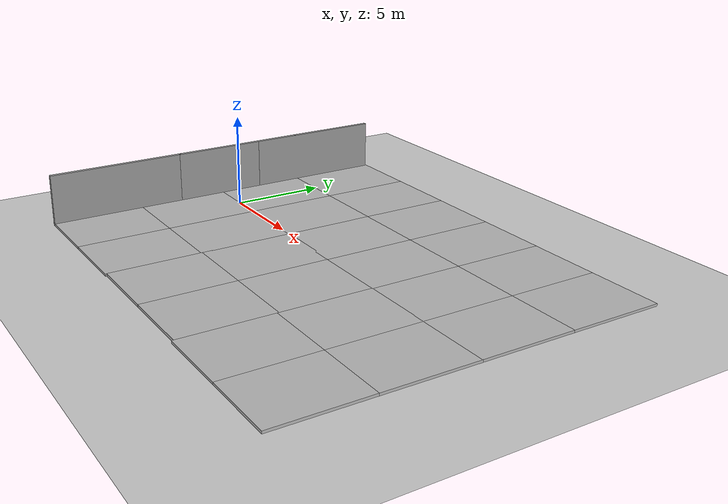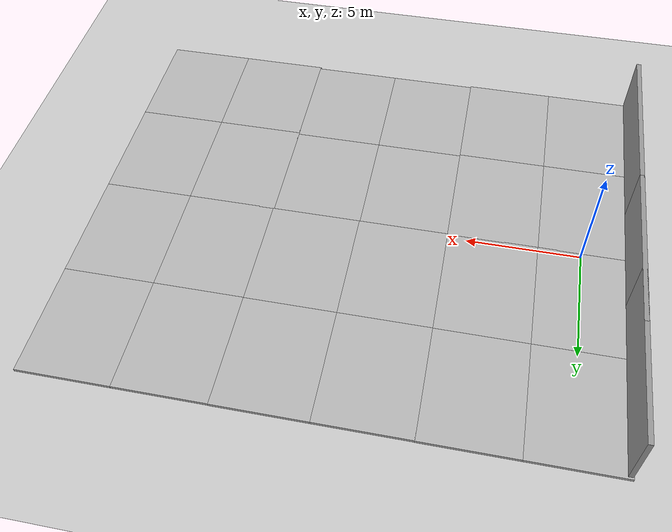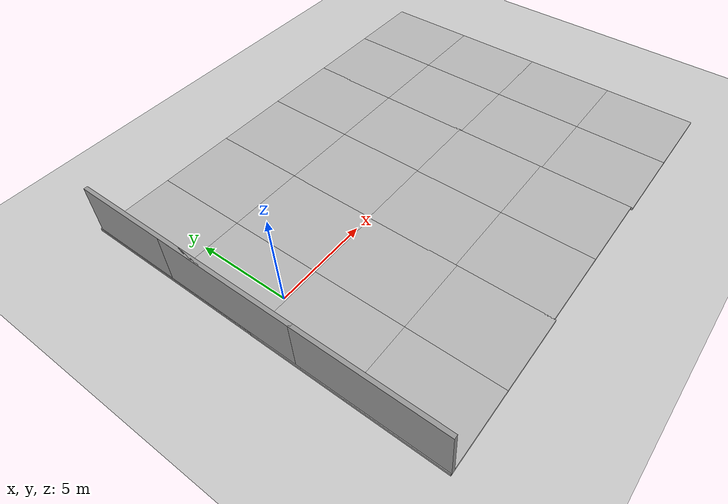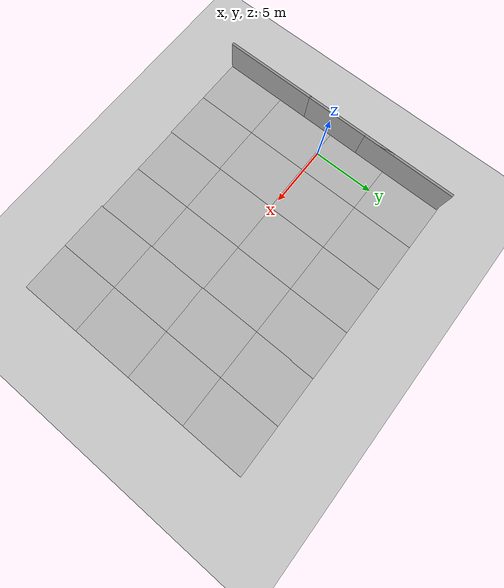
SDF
<sdf version="1.7">
 <world name="default">
  <light name="sun" type="directional">
   <pose>0 0 10 0 -0 0</pose>
   <diffuse>0.8 0.8 0.8 1</diffuse>
   <specular>0.1 0.1 0.1 1</specular>
   <attenuation>
    <range>1000</range>
    <constant>0.9</constant>
    <linear>0.01</linear>
    <quadratic>0.001</quadratic>
   </attenuation>
   <direction>-0.5 0.5 -1</direction>
   <spot><inner_angle>0</inner_angle><outer_angle>0</outer_angle><falloff>0</falloff></spot>
  </light>
  <model name="ground_plane">
   <static>1</static>
   <link name="link">
    <collision name="collision">
     <geometry><plane><normal>0 0 1</normal><size>100 100</size></plane></geometry>
     <surface><friction><ode><mu>100</mu><mu2>50</mu2></ode></friction></surface>
    </collision>
    <visual name="visual">
     <cast_shadows>0</cast_shadows>
     <geometry><plane><normal>0 0 1</normal><size>100 100</size></plane></geometry>
     <material>
      <script><uri>file://media/materials/scripts/gazebo.material</uri><name>Gazebo/Grey</name></script>
     </material>
    </visual>
   </link>
  </model>
  <gravity>0 0 -9.8</gravity>
  <magnetic_field>6e-06 2.3e-05 -4.2e-05</magnetic_field>
  <atmosphere type="adiabatic"/>
  <physics name="default_physics" default="0" type="ode">
   <max_step_size>0.001</max_step_size>
   <real_time_factor>1</real_time_factor>
   <real_time_update_rate>1000</real_time_update_rate>
  </physics>
  <scene><ambient>0.4 0.4 0.4 1</ambient><background>0.7 0.7 0.7 1</background><shadows>1</shadows></scene>
  <spherical_coordinates>
   <surface_model>EARTH_WGS84</surface_model>
   <latitude_deg>45.4778</latitude_deg>
   <longitude_deg>9.23306</longitude_deg>
   <elevation>177</elevation>
   <heading_deg>180</heading_deg>
  </spherical_coordinates>
  <model name="mud_box_0">
   <static>1</static>
   <link name="link">
    <collision name="collision"><geometry><box><size>8 10 0.2</size></box></geometry></collision>
    <visual name="visual_1">
     <pose>-2 2.5 0 0 -0 0</pose>
     <cast_shadows>0</cast_shadows>
     <geometry><box><size>4 5 0.2</size></box></geometry>
     <material>
      <script>
       <uri>model://mud_box/materials/scripts</uri>
       <uri>model://mud_box/materials/textures</uri>
       <name>vrc/mud</name>
      </script>
     </material>
    </visual>
    <visual name="visual_2">
     <pose>2 2.5 0 0 -0 0</pose>
     <cast_shadows>0</cast_shadows>
     <geometry><box><size>4 5 0.2</size></box></geometry>
     <material>
      <script>
       <uri>model://mud_box/materials/scripts</uri>
       <uri>model://mud_box/materials/textures</uri>
       <name>vrc/mud</name>
      </script>
     </material>
    </visual>
    <visual name="visual_3">
     <pose>2 -2.5 0 0 -0 0</pose>
     <cast_shadows>0</cast_shadows>
     <geometry><box><size>4 5 0.2</size></box></geometry>
     <material>
      <script>
       <uri>model://mud_box/materials/scripts</uri>
       <uri>model://mud_box/materials/textures</uri>
       <name>vrc/mud</name>
      </script>
     </material>
    </visual>
    <visual name="visual_4">
     <pose>-2 -2.5 0 0 -0 0</pose>
     <cast_shadows>0</cast_shadows>
     <geometry><box><size>4 5 0.2</size></box></geometry>
     <material>
      <script>
       <uri>model://mud_box/materials/scripts</uri>
       <uri>model://mud_box/materials/textures</uri>
       <name>vrc/mud</name>
      </script>
     </material>
    </visual>
   </link>
   <pose>1.86767 4.83104 0 0 -0 0</pose>
  </model>
  <model name="mud_box_2">
   <static>1</static>
   <link name="link">
    <collision name="collision"><geometry><box><size>8 10 0.2</size></box></geometry></collision>
    <visual name="visual_1">
     <pose>-2 2.5 0 0 -0 0</pose>
     <cast_shadows>0</cast_shadows>
     <geometry><box><size>4 5 0.2</size></box></geometry>
     <material>
      <script>
       <uri>model://mud_box/materials/scripts</uri>
       <uri>model://mud_box/materials/textures</uri>
       <name>vrc/mud</name>
      </script>
     </material>
    </visual>
    <visual name="visual_2">
     <pose>2 2.5 0 0 -0 0</pose>
     <cast_shadows>0</cast_shadows>
     <geometry><box><size>4 5 0.2</size></box></geometry>
     <material>
      <script>
       <uri>model://mud_box/materials/scripts</uri>
       <uri>model://mud_box/materials/textures</uri>
       <name>vrc/mud</name>
      </script>
     </material>
    </visual>
    <visual name="visual_3">
     <pose>2 -2.5 0 0 -0 0</pose>
     <cast_shadows>0</cast_shadows>
     <geometry><box><size>4 5 0.2</size></box></geometry>
     <material>
      <script>
       <uri>model://mud_box/materials/scripts</uri>
       <uri>model://mud_box/materials/textures</uri>
       <name>vrc/mud</name>
      </script>
     </material>
    </visual>
    <visual name="visual_4">
     <pose>-2 -2.5 0 0 -0 0</pose>
     <cast_shadows>0</cast_shadows>
     <geometry><box><size>4 5 0.2</size></box></geometry>
     <material>
      <script>
       <uri>model://mud_box/materials/scripts</uri>
       <uri>model://mud_box/materials/textures</uri>
       <name>vrc/mud</name>
      </script>
     </material>
    </visual>
   </link>
   <pose>1.85975 -5.14192 0 0 -0 0</pose>
  </model>
  <model name="mud_box_3">
   <static>1</static>
   <link name="link">
    <collision name="collision"><geometry><box><size>8 10 0.2</size></box></geometry></collision>
    <visual name="visual_1">
     <pose>-2 2.5 0 0 -0 0</pose>
     <cast_shadows>0</cast_shadows>
     <geometry><box><size>4 5 0.2</size></box></geometry>
     <material>
      <script>
       <uri>model://mud_box/materials/scripts</uri>
       <uri>model://mud_box/materials/textures</uri>
       <name>vrc/mud</name>
      </script>
     </material>
    </visual>
    <visual name="visual_2">
     <pose>2 2.5 0 0 -0 0</pose>
     <cast_shadows>0</cast_shadows>
     <geometry><box><size>4 5 0.2</size></box></geometry>
     <material>
      <script>
       <uri>model://mud_box/materials/scripts</uri>
       <uri>model://mud_box/materials/textures</uri>
       <name>vrc/mud</name>
      </script>
     </material>
    </visual>
    <visual name="visual_3">
     <pose>2 -2.5 0 0 -0 0</pose>
     <cast_shadows>0</cast_shadows>
     <geometry><box><size>4 5 0.2</size></box></geometry>
     <material>
      <script>
       <uri>model://mud_box/materials/scripts</uri>
       <uri>model://mud_box/materials/textures</uri>
       <name>vrc/mud</name>
      </script>
     </material>
    </visual>
    <visual name="visual_4">
     <pose>-2 -2.5 0 0 -0 0</pose>
     <cast_shadows>0</cast_shadows>
     <geometry><box><size>4 5 0.2</size></box></geometry>
     <material>
      <script>
       <uri>model://mud_box/materials/scripts</uri>
       <uri>model://mud_box/materials/textures</uri>
       <name>vrc/mud</name>
      </script>
     </material>
    </visual>
   </link>
   <pose>9.84986 4.82173 0 0 -0 0</pose>
  </model>
  <audio><device>default</device></audio>
  <model name="mud_box_4">
   <static>1</static>
   <link name="link">
    <collision name="collision"><geometry><box><size>8 10 0.2</size></box></geometry></collision>
    <visual name="visual_1">
     <pose>-2 2.5 0 0 -0 0</pose>
     <cast_shadows>0</cast_shadows>
     <geometry><box><size>4 5 0.2</size></box></geometry>
     <material>
      <script>
       <uri>model://mud_box/materials/scripts</uri>
       <uri>model://mud_box/materials/textures</uri>
       <name>vrc/mud</name>
      </script>
     </material>
    </visual>
    <visual name="visual_2">
     <pose>2 2.5 0 0 -0 0</pose>
     <cast_shadows>0</cast_shadows>
     <geometry><box><size>4 5 0.2</size></box></geometry>
     <material>
      <script>
       <uri>model://mud_box/materials/scripts</uri>
       <uri>model://mud_box/materials/textures</uri>
       <name>vrc/mud</name>
      </script>
     </material>
    </visual>
    <visual name="visual_3">
     <pose>2 -2.5 0 0 -0 0</pose>
     <cast_shadows>0</cast_shadows>
     <geometry><box><size>4 5 0.2</size></box></geometry>
     <material>
      <script>
       <uri>model://mud_box/materials/scripts</uri>
       <uri>model://mud_box/materials/textures</uri>
       <name>vrc/mud</name>
      </script>
     </material>
    </visual>
    <visual name="visual_4">
     <pose>-2 -2.5 0 0 -0 0</pose>
     <cast_shadows>0</cast_shadows>
     <geometry><box><size>4 5 0.2</size></box></geometry>
     <material>
      <script>
       <uri>model://mud_box/materials/scripts</uri>
       <uri>model://mud_box/materials/textures</uri>
       <name>vrc/mud</name>
      </script>
     </material>
    </visual>
   </link>
   <pose>9.82092 -5.06835 0 0 -0 0</pose>
  </model>
  <model name="grey_wall">
   <static>1</static>
   <link name="link">
    <pose>0 0 1.4 0 -0 0</pose>
    <collision name="collision"><geometry><box><size>7.5 0.2 2.8</size></box></geometry></collision>
    <visual name="visual">
     <cast_shadows>0</cast_shadows>
     <geometry><box><size>7.5 0.2 2.8</size></box></geometry>
     <material>
      <script>
       <uri>model://grey_wall/materials/scripts</uri>
       <uri>model://grey_wall/materials/textures</uri>
       <name>vrc/grey_wall</name>
      </script>
     </material>
    </visual>
   </link>
   <pose>-2 -6.4 0 0 0 -1.57061</pose>
  </model>
  <model name="grey_wall_clone">
   <static>1</static>
   <link name="link">
    <pose>0 0 1.4 0 -0 0</pose>
    <collision name="collision"><geometry><box><size>7.5 0.2 2.8</size></box></geometry></collision>
    <visual name="visual">
     <cast_shadows>0</cast_shadows>
     <geometry><box><size>7.5 0.2 2.8</size></box></geometry>
     <material>
      <script>
       <uri>model://grey_wall/materials/scripts</uri>
       <uri>model://grey_wall/materials/textures</uri>
       <name>vrc/grey_wall</name>
      </script>
     </material>
    </visual>
   </link>
   <pose>-2 1 0 0 0 -1.57061</pose>
  </model>
  <model name="grey_wall_clone_0">
   <static>1</static>
   <link name="link">
    <pose>0 0 1.4 0 -0 0</pose>
    <collision name="collision"><geometry><box><size>7.5 0.2 2.8</size></box></geometry></collision>
    <visual name="visual">
     <cast_shadows>0</cast_shadows>
     <geometry><box><size>7.5 0.2 2.8</size></box></geometry>
     <material>
      <script>
       <uri>model://grey_wall/materials/scripts</uri>
       <uri>model://grey_wall/materials/textures</uri>
       <name>vrc/grey_wall</name>
      </script>
     </material>
    </visual>
   </link>
   <pose>-2 6 0 0 0 -1.57061</pose>
  </model>
  <model name="mud_box">
   <static>1</static>
   <link name="link">
    <collision name="collision"><geometry><box><size>8 10 0.2</size></box></geometry></collision>
    <visual name="visual_1">
     <pose>-2 2.5 0 0 -0 0</pose>
     <cast_shadows>0</cast_shadows>
     <geometry><box><size>4 5 0.2</size></box></geometry>
     <material>
      <script>
       <uri>model://mud_box/materials/scripts</uri>
       <uri>model://mud_box/materials/textures</uri>
       <name>vrc/mud</name>
      </script>
     </material>
    </visual>
    <visual name="visual_2">
     <pose>2 2.5 0 0 -0 0</pose>
     <cast_shadows>0</cast_shadows>
     <geometry><box><size>4 5 0.2</size></box></geometry>
     <material>
      <script>
       <uri>model://mud_box/materials/scripts</uri>
       <uri>model://mud_box/materials/textures</uri>
       <name>vrc/mud</name>
      </script>
     </material>
    </visual>
    <visual name="visual_3">
     <pose>2 -2.5 0 0 -0 0</pose>
     <cast_shadows>0</cast_shadows>
     <geometry><box><size>4 5 0.2</size></box></geometry>
     <material>
      <script>
       <uri>model://mud_box/materials/scripts</uri>
       <uri>model://mud_box/materials/textures</uri>
       <name>vrc/mud</name>
      </script>
     </material>
    </visual>
    <visual name="visual_4">
     <pose>-2 -2.5 0 0 -0 0</pose>
     <cast_shadows>0</cast_shadows>
     <geometry><box><size>4 5 0.2</size></box></geometry>
     <material>
      <script>
       <uri>model://mud_box/materials/scripts</uri>
       <uri>model://mud_box/materials/textures</uri>
       <name>vrc/mud</name>
      </script>
     </material>
    </visual>
   </link>
   <pose>17.7971 4.81284 0 0 -0 0</pose>
  </model>
  <model name="mud_box_1">
   <static>1</static>
   <link name="link">
    <collision name="collision"><geometry><box><size>8 10 0.2</size></box></geometry></collision>
    <visual name="visual_1">
     <pose>-2 2.5 0 0 -0 0</pose>
     <cast_shadows>0</cast_shadows>
     <geometry><box><size>4 5 0.2</size></box></geometry>
     <material>
      <script>
       <uri>model://mud_box/materials/scripts</uri>
       <uri>model://mud_box/materials/textures</uri>
       <name>vrc/mud</name>
      </script>
     </material>
    </visual>
    <visual name="visual_2">
     <pose>2 2.5 0 0 -0 0</pose>
     <cast_shadows>0</cast_shadows>
     <geometry><box><size>4 5 0.2</size></box></geometry>
     <material>
      <script>
       <uri>model://mud_box/materials/scripts</uri>
       <uri>model://mud_box/materials/textures</uri>
       <name>vrc/mud</name>
      </script>
     </material>
    </visual>
    <visual name="visual_3">
     <pose>2 -2.5 0 0 -0 0</pose>
     <cast_shadows>0</cast_shadows>
     <geometry><box><size>4 5 0.2</size></box></geometry>
     <material>
      <script>
       <uri>model://mud_box/materials/scripts</uri>
       <uri>model://mud_box/materials/textures</uri>
       <name>vrc/mud</name>
      </script>
     </material>
    </visual>
    <visual name="visual_4">
     <pose>-2 -2.5 0 0 -0 0</pose>
     <cast_shadows>0</cast_shadows>
     <geometry><box><size>4 5 0.2</size></box></geometry>
     <material>
      <script>
       <uri>model://mud_box/materials/scripts</uri>
       <uri>model://mud_box/materials/textures</uri>
       <name>vrc/mud</name>
      </script>
     </material>
    </visual>
   </link>
   <pose>17.8011 -5.1613 0 0 -0 0</pose>
  </model>
 </world>
</sdf>
